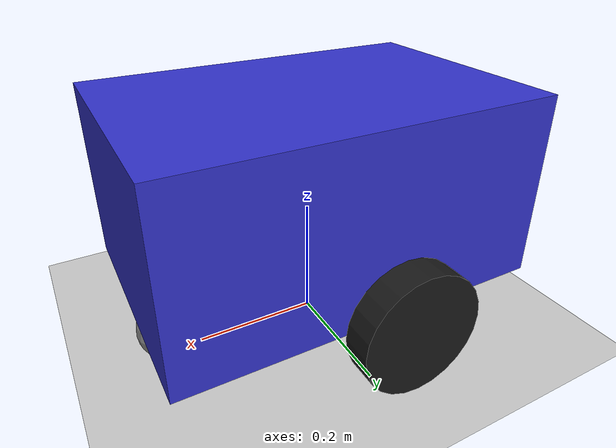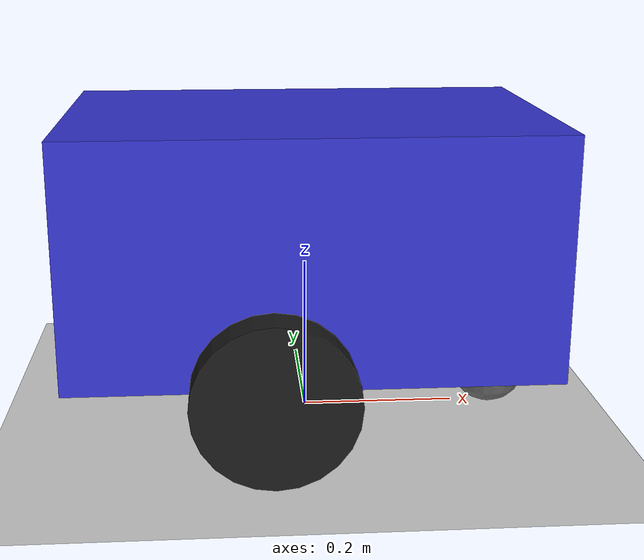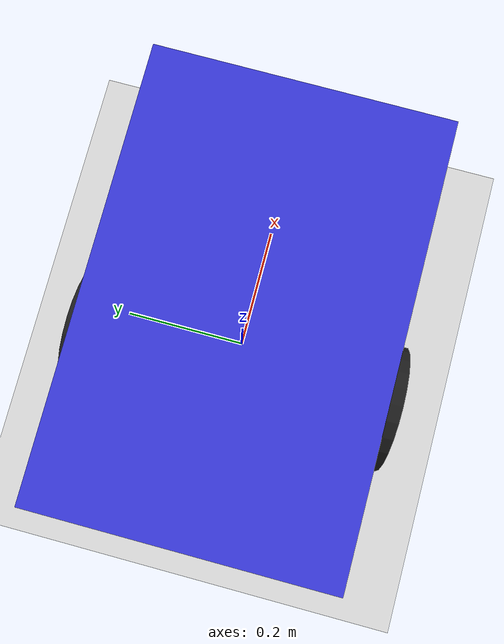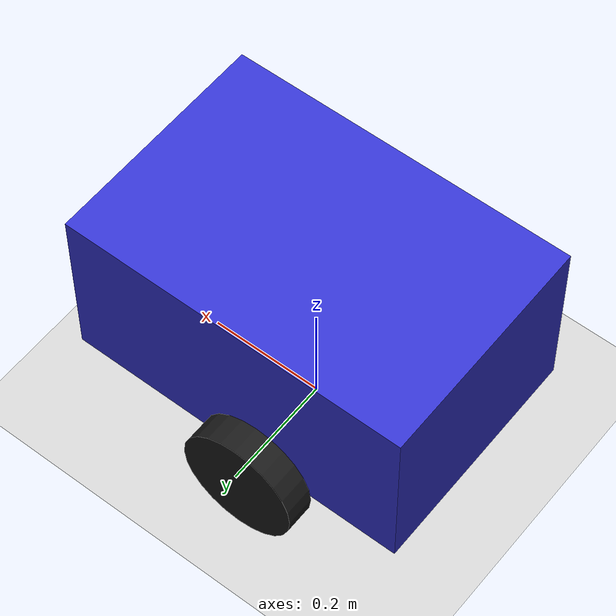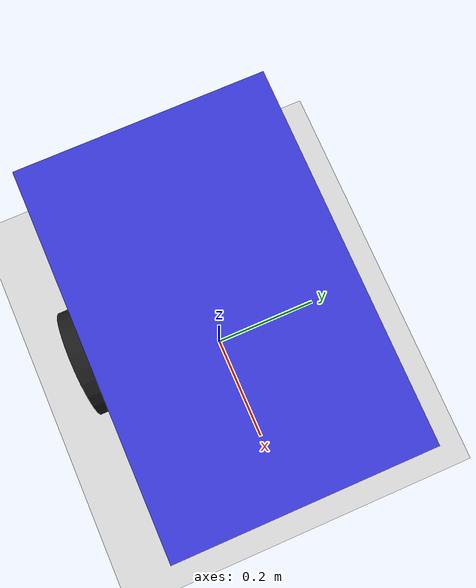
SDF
<?xml version="1.0" ?>
<sdf version="1.10">
  <world name="test_world">

    <!-- Physics: 1 ms step, real-time factor 1.0 -->
    <physics name="1ms" type="ignored">
      <max_step_size>0.001</max_step_size>
      <real_time_factor>1.0</real_time_factor>
    </physics>

    <!-- World-level plugins -->
    <plugin
      filename="gz-sim-physics-system"
      name="gz::sim::systems::Physics">
    </plugin>
    <plugin
      filename="gz-sim-user-commands-system"
      name="gz::sim::systems::UserCommands">
    </plugin>
    <plugin
      filename="gz-sim-scene-broadcaster-system"
      name="gz::sim::systems::SceneBroadcaster">
    </plugin>
    <plugin
      filename="gz-sim-sensors-system"
      name="gz::sim::systems::Sensors">
      <render_engine>ogre</render_engine>
    </plugin>
    <plugin
      filename="gz-sim-imu-system"
      name="gz::sim::systems::Imu">
    </plugin>

    <!-- Directional light (sun) -->
<light type="directional" name="sun">
      <cast_shadows>true</cast_shadows>
      <pose>0 0 10 0 0 0</pose>
      <diffuse>0.8 0.8 0.8 1</diffuse>
      <specular>0.2 0.2 0.2 1</specular>
      <attenuation>
        <range>1000</range>
        <constant>0.9</constant>
        <linear>0.01</linear>
        <quadratic>0.001</quadratic>
      </attenuation>
      <direction>-0.5 0.1 -0.9</direction>
    </light>

    <!-- Ground plane -->
    <!-- Service robot -->
    <include>
      <uri>model://service_robot</uri>
      <pose>0 0 0.25 0 0 0</pose>
    </include>
    <model name="ground_plane">
      <static>true</static>
      <link name="link">
        <collision name="collision">
          <geometry>
            <plane>
              <normal>0 0 1</normal>
            </plane>
          </geometry>
        </collision>
        <visual name="visual">
          <geometry>
            <plane>
              <normal>0 0 1</normal>
              <size>100 100</size>
            </plane>
          </geometry>
          <material>
            <ambient>0.8 0.8 0.8 1</ambient>
            <diffuse>0.8 0.8 0.8 1</diffuse>
            <specular>0.8 0.8 0.8 1</specular>
          </material>
        </visual>
      </link>
    </model>

  </world>
</sdf>

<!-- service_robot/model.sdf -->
<sdf version="1.10">
  <model name='service_robot' canonical_link='base_link'>

    <!-- BASE LINK (chassis) -->
    <link name='base_link'>
      <pose relative_to='__model__'>0 0 0 0 0 0</pose>
      <inertial>
        <mass>5.0</mass>
        <inertia>
          <ixx>0.1042</ixx>
          <iyy>0.1875</iyy>
          <izz>0.2167</izz>
          <ixy>0</ixy><ixz>0</ixz><iyz>0</iyz>
        </inertia>
      </inertial>
      <visual name='chassis_visual'>
        <geometry><box><size>0.6 0.4 0.3</size></box></geometry>
        <material>
          <ambient>0.2 0.2 0.8 1</ambient>
          <diffuse>0.2 0.2 0.8 1</diffuse>
          <specular>0.3 0.3 0.3 1</specular>
        </material>
      </visual>
      <collision name='chassis_collision'>
        <geometry><box><size>0.6 0.4 0.3</size></box></geometry>
      </collision>

      <!-- LIDAR SENSOR -->
      <sensor name='gpu_lidar' type='gpu_lidar'>
        <gz_frame_id>lidar_link</gz_frame_id>
        <pose>0 0 0.2 0 0 0</pose>
        <topic>scan</topic>
        <update_rate>10</update_rate>
        <always_on>1</always_on>
        <visualize>true</visualize>
        <ray>
          <scan>
            <horizontal>
              <samples>640</samples>
              <resolution>1</resolution>
              <min_angle>-2.35619</min_angle>
              <max_angle>2.35619</max_angle>
            </horizontal>
            <vertical>
              <samples>1</samples>
              <resolution>0.01</resolution>
              <min_angle>0</min_angle>
              <max_angle>0</max_angle>
            </vertical>
          </scan>
          <range>
            <min>0.08</min>
            <max>10.0</max>
            <resolution>0.01</resolution>
          </range>
        </ray>
      </sensor>

      <!-- CAMERA SENSOR (front-facing) -->
      <sensor name='front_camera' type='camera'>
        <gz_frame_id>camera_link</gz_frame_id>
        <pose>0.3 0 0.05 0 0 0</pose>
        <topic>camera/image_raw</topic>
        <update_rate>15</update_rate>
        <always_on>1</always_on>
        <camera>
          <horizontal_fov>1.05</horizontal_fov>
          <image>
            <width>640</width>
            <height>480</height>
            <format>R8G8B8</format>
          </image>
          <clip>
            <near>0.1</near>
            <far>100</far>
          </clip>
        </camera>
      </sensor>

      <!-- IMU SENSOR -->
      <sensor name='imu_sensor' type='imu'>
        <gz_frame_id>imu_link</gz_frame_id>
        <pose>0 0 0 0 0 0</pose>
        <topic>imu</topic>
        <update_rate>50</update_rate>
        <always_on>1</always_on>
      </sensor>
    </link>

    <!-- LEFT WHEEL -->
    <link name='left_wheel'>
      <pose relative_to='base_link'>-0.05 0.23 -0.15 -1.5707963 0 0</pose>
      <inertial>
        <mass>0.5</mass>
        <inertia>
          <ixx>0.00135</ixx>
          <iyy>0.00135</iyy>
          <izz>0.0025</izz>
          <ixy>0</ixy><ixz>0</ixz><iyz>0</iyz>
        </inertia>
      </inertial>
      <visual name='left_wheel_visual'>
        <geometry><cylinder><radius>0.1</radius><length>0.05</length></cylinder></geometry>
        <material>
          <ambient>0.1 0.1 0.1 1</ambient>
          <diffuse>0.1 0.1 0.1 1</diffuse>
          <specular>0.1 0.1 0.1 1</specular>
        </material>
      </visual>
      <collision name='left_wheel_collision'>
        <geometry><cylinder><radius>0.1</radius><length>0.05</length></cylinder></geometry>
      </collision>
    </link>

    <!-- RIGHT WHEEL -->
    <link name='right_wheel'>
      <pose relative_to='base_link'>-0.05 -0.23 -0.15 -1.5707963 0 0</pose>
      <inertial>
        <mass>0.5</mass>
        <inertia>
          <ixx>0.00135</ixx>
          <iyy>0.00135</iyy>
          <izz>0.0025</izz>
          <ixy>0</ixy><ixz>0</ixz><iyz>0</iyz>
        </inertia>
      </inertial>
      <visual name='right_wheel_visual'>
        <geometry><cylinder><radius>0.1</radius><length>0.05</length></cylinder></geometry>
        <material>
          <ambient>0.1 0.1 0.1 1</ambient>
          <diffuse>0.1 0.1 0.1 1</diffuse>
          <specular>0.1 0.1 0.1 1</specular>
        </material>
      </visual>
      <collision name='right_wheel_collision'>
        <geometry><cylinder><radius>0.1</radius><length>0.05</length></cylinder></geometry>
      </collision>
    </link>

    <!-- CASTER WHEEL -->
    <link name='caster'>
      <pose relative_to='base_link'>0.25 0 -0.20 0 0 0</pose>
      <inertial>
        <mass>0.1</mass>
        <inertia>
          <ixx>0.0001</ixx>
          <iyy>0.0001</iyy>
          <izz>0.0001</izz>
          <ixy>0</ixy><ixz>0</ixz><iyz>0</iyz>
        </inertia>
      </inertial>
      <visual name='caster_visual'>
        <geometry><sphere><radius>0.05</radius></sphere></geometry>
        <material>
          <ambient>0.5 0.5 0.5 1</ambient>
          <diffuse>0.5 0.5 0.5 1</diffuse>
          <specular>0.5 0.5 0.5 1</specular>
        </material>
      </visual>
      <collision name='caster_collision'>
        <geometry><sphere><radius>0.05</radius></sphere></geometry>
      </collision>
    </link>

    <!-- JOINTS -->
    <joint name='left_wheel_joint' type='revolute'>
      <pose relative_to='left_wheel'/>
      <parent>base_link</parent>
      <child>left_wheel</child>
      <axis>
        <xyz expressed_in='__model__'>0 1 0</xyz>
        <limit>
          <lower>-1.79769e+308</lower>
          <upper>1.79769e+308</upper>
        </limit>
      </axis>
    </joint>

    <joint name='right_wheel_joint' type='revolute'>
      <pose relative_to='right_wheel'/>
      <parent>base_link</parent>
      <child>right_wheel</child>
      <axis>
        <xyz expressed_in='__model__'>0 1 0</xyz>
        <limit>
          <lower>-1.79769e+308</lower>
          <upper>1.79769e+308</upper>
        </limit>
      </axis>
    </joint>

    <joint name='caster_joint' type='ball'>
      <parent>base_link</parent>
      <child>caster</child>
    </joint>

    <!-- DIFFERENTIAL DRIVE PLUGIN -->
    <plugin
      filename="gz-sim-diff-drive-system"
      name="gz::sim::systems::DiffDrive">
      <left_joint>left_wheel_joint</left_joint>
      <right_joint>right_wheel_joint</right_joint>
      <wheel_separation>0.46</wheel_separation>
      <wheel_radius>0.1</wheel_radius>
      <odom_publish_frequency>30</odom_publish_frequency>
      <topic>cmd_vel</topic>
      <odom_topic>odom</odom_topic>
      <frame_id>odom</frame_id>
      <child_frame_id>base_link</child_frame_id>
      <tf_topic>tf</tf_topic>
    </plugin>

    <!-- JOINT STATE PUBLISHER -->
    <plugin
      filename="gz-sim-joint-state-publisher-system"
      name="gz::sim::systems::JointStatePublisher">
      <publish_rate>50</publish_rate>
    </plugin>

  </model>
</sdf>
